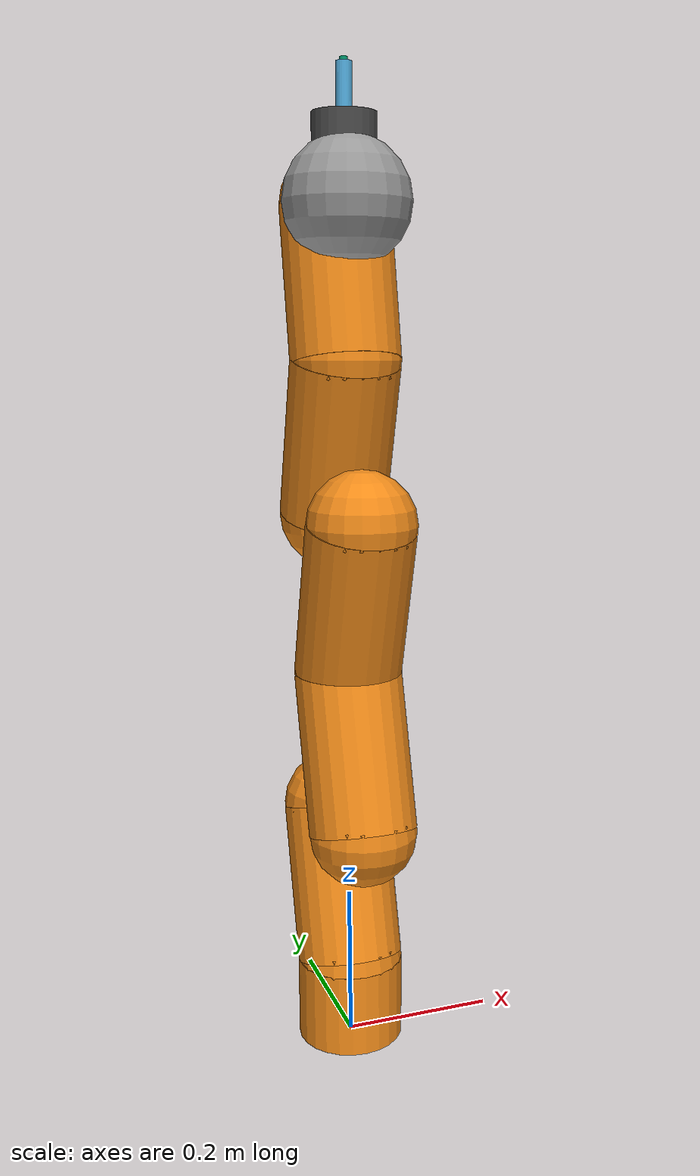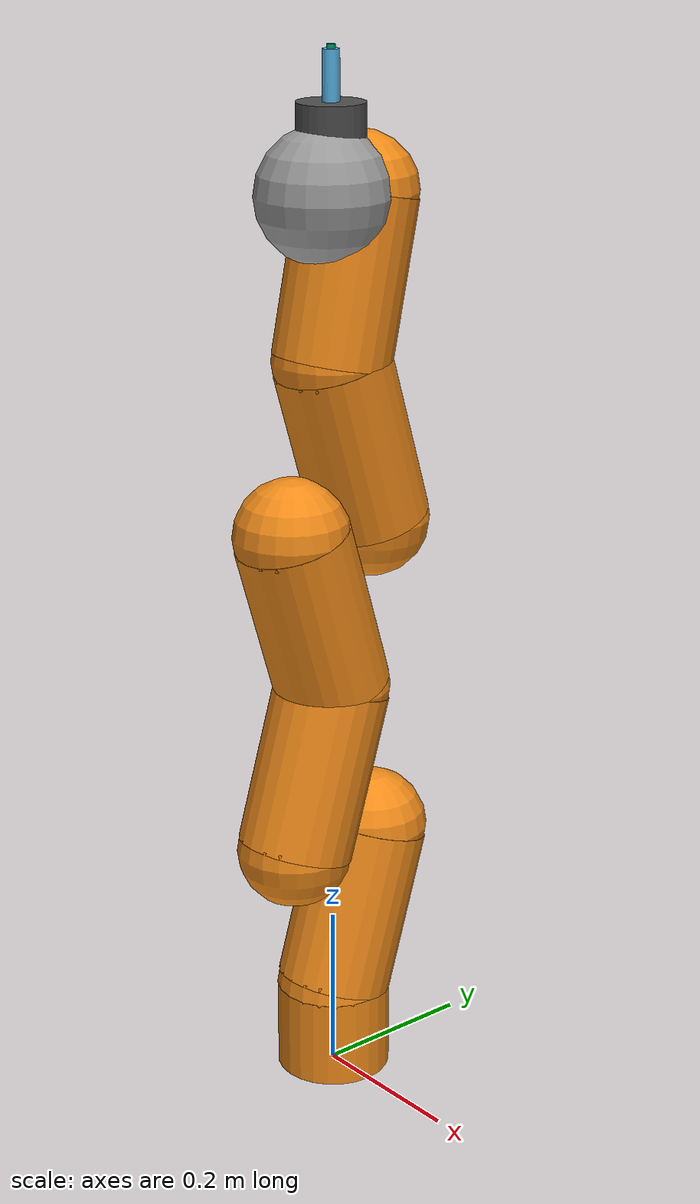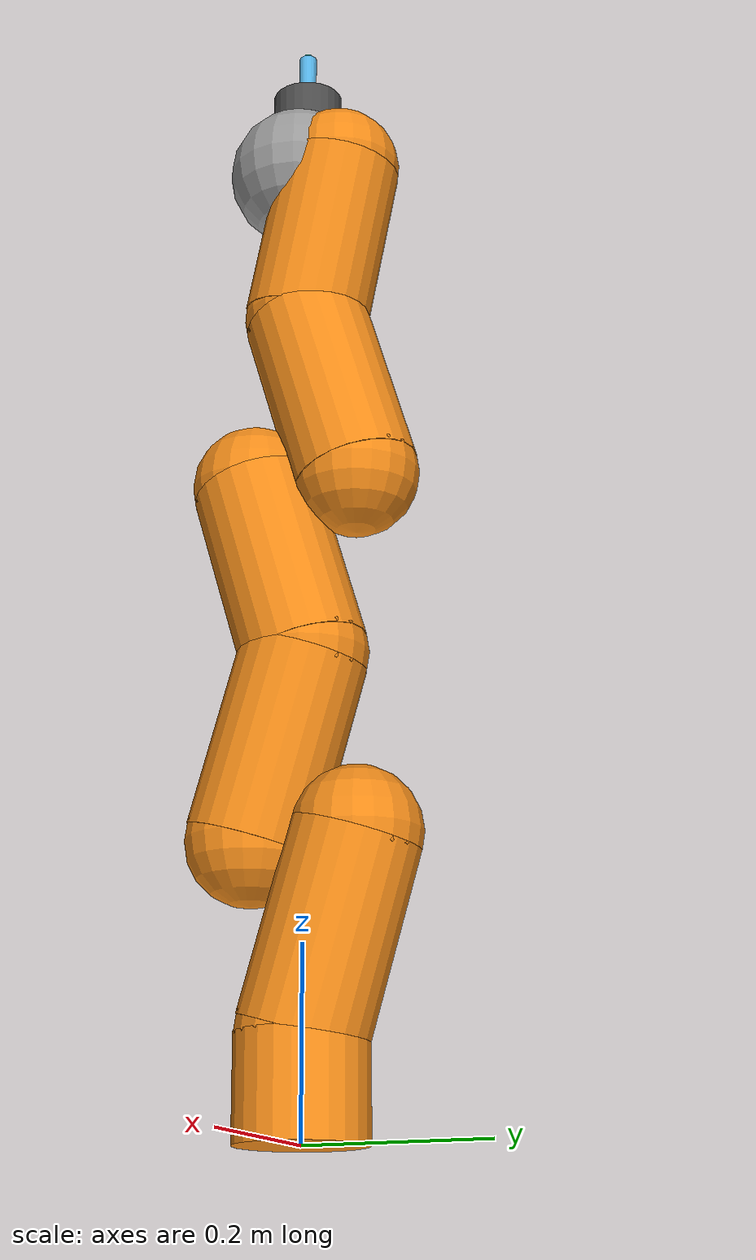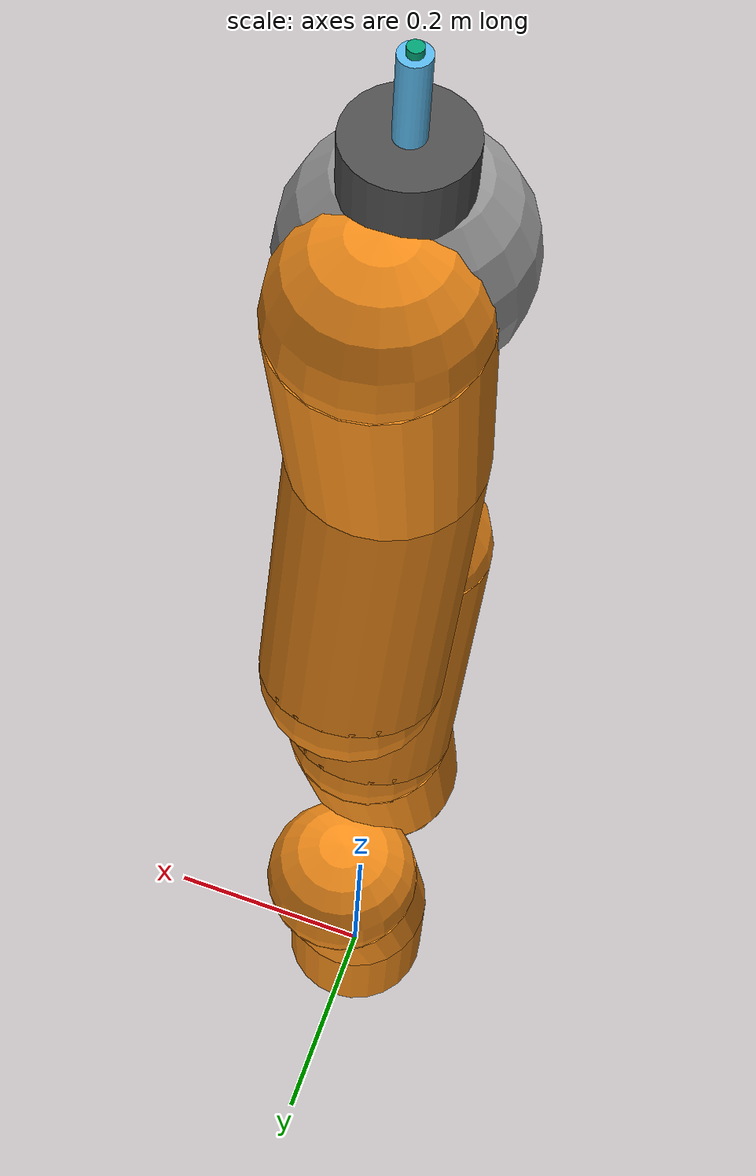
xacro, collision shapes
<?xml version="1.0"?>
<robot xmlns:xacro="http://www.ros.org/wiki/xacro" name="single_lwr_robot">
  <xacro:include filename="$(find lwr_description)/model/kuka_lwr.urdf.xacro"/>
  <!-- Match the supplied URDF: mount the arm directly at the world origin. -->
  <link name="world"/>
  <xacro:kuka_lwr parent="world" name="lwr">
    <origin xyz="0 0 0" rpy="0 0 0"/>
  </xacro:kuka_lwr>
  <gazebo reference="world_lwr_base_joint">
    <preserveFixedJoint>true</preserveFixedJoint>
  </gazebo>
</robot>

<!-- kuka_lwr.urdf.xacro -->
<robot name="kuka_lwr" xmlns:xacro="http://www.ros.org/wiki/xacro">

	<!-- utils /-->
	<xacro:include filename="$(find lwr_description)/model/utils.xacro"/>
	<xacro:include filename="$(find lwr_description)/model/kuka_materials.xacro"
	/>

	<!-- gazebo and transmission models /-->
	<xacro:include filename="$(find lwr_description)/model/kuka_lwr.gazebo.xacro"/>
	<xacro:include filename="$(find lwr_description)/model/kuka_lwr.ros2_control.xacro"/>

	<xacro:include filename="$(find lwr_description)/model/tool.xacro"/>

	<!-- properties /-->
	<xacro:property name="base_mass" value="2.0"/>
	<xacro:property name="link_mass" value="2.35"/>
    <xacro:property name="wrist_mass" value="1.1"/>
    <xacro:property name="tip_mass" value="0.25"/>
	<xacro:property name="velocity_scale" value="1"/>
	<xacro:property name="effort_scale" value="1"/>

	<xacro:property name="max_stiffness" value="5000"/>
	<xacro:property name="min_stiffness" value="0"/>
	<xacro:property name="rate_stiffness" value="20000"/> <!-- reflex to stiffness -->

	<!-- ROS 2 arguments; the ROS 1 model layout and geometry are preserved. -->
	<xacro:arg name="ros2_control_hardware_type" default="gazebo"/>
	<xacro:arg name="ros2_control_params_file" default=""/>
	<xacro:arg name="use_stiffness_joints" default="false"/>
	<xacro:arg name="fri_backend" default="fri"/>
	<xacro:arg name="fri_port" default="49939"/>
	<xacro:arg name="fri_ip" default="192.168.0.10"/>
	<xacro:arg name="fri_init_file" default=""/>
	<xacro:arg name="fri_receive_timeout_ms" default="100"/>
	<xacro:arg name="hw_root" default=""/>
	<xacro:arg name="hw_tip" default=""/>

	<!-- URDF model /-->
	<xacro:macro name="kuka_lwr" params="parent name *origin">
		<xacro:if value="${'$(arg ros2_control_hardware_type)' == 'gazebo'}">
			<xacro:if value="$(arg use_stiffness_joints)">
				<xacro:property name="invalid_stiffness" lazy_eval="false" value="${xacro.fatal('Gazebo cannot simulate ROS 1 massless stiffness metadata joints; use use_stiffness_joints:=false.')}"/>
			</xacro:if>
		</xacro:if>

		<!-- First (shoulder) element of the arm. Fixed to its parent. -->
		<joint name="${parent}_${name}_base_joint" type="fixed">
			<xacro:insert_block name="origin"/>
			<parent link="${parent}"/>
			<child link="${name}_base_link"/>
		</joint>

		<link name="${name}_base_link">
			<inertial>
				<mass value="${base_mass}"/>
				<origin xyz="0 0 0.055"  />
				<xacro:cylinder_inertia_def radius="0.06" length="0.11" mass="${base_mass}"/>
			</inertial>
			<visual>
				<origin xyz="0 0 0" rpy="0 0 ${M_PI}"/>
				<geometry>
					<mesh filename="package://lwr_description/meshes/lwr4plus/visual/base.STL"/>
				</geometry>
				<material name="Kuka/Orange"/>
			</visual>
			<collision>
				<origin xyz="0 0 0.055" rpy="0 0 ${M_PI}"/>
				<geometry>
					<cylinder radius="0.07" length="0.11"/>
				</geometry>
			</collision>
		</link>

		<!-- Second segment of the arm. Joint along z-axis -->
		<joint name="${name}_a1_joint" type="revolute">
			<origin xyz="0 0 0.11" rpy="0 0 0"/>
			<axis xyz="0 0 1"/>
			<limit lower="${-170 * M_PI / 180}" upper="${170 * M_PI / 180}" effort="176" velocity="${velocity_scale * 110 * M_PI / 180}" />
			<dynamics friction="10.0" damping="1.0"/>
			<parent link="${name}_base_link"/>
			<child link="${name}_1_link"/>
		</joint>

		<xacro:if value="$(arg use_stiffness_joints)">
		<joint name="${name}_a1_joint_stiffness" type="revolute">
			<axis xyz="0 0 1"/>
			<limit lower="${min_stiffness}" upper="${max_stiffness}" effort="0" velocity="${rate_stiffness}" />
			<safety_controller soft_lower_limit="${min_stiffness}" soft_upper_limit="${max_stiffness}" k_position="30" k_velocity="30"/>
			<parent link="${name}_base_link"/>
			<child link="${name}_1_link_dummy"/>
		</joint>
		<link name="${name}_1_link_dummy"/>
		</xacro:if>

		<link name="${name}_1_link">
			<inertial>
				<mass value="${link_mass}"/>
				<origin rpy="0 0 0" xyz="0 -0.06 0.130"/>
				<xacro:cuboid_inertia_def length="0.12" width="0.06" height="0.260" mass="${link_mass}"/>
			</inertial>
			<visual>
				<origin xyz="0 0 -0.008" rpy="0 0 ${M_PI}"/>
				<geometry>
					<mesh filename="package://lwr_description/meshes/lwr4plus/visual/link_1.STL"/>
				</geometry>
				<material name="Kuka/Orange"/>
			</visual>
			<collision>
				<origin xyz="0 0 0.0" rpy="0 0 0"/>
				<geometry>
					<sphere radius="0.07"/>
				</geometry>
			</collision>
			<collision>
				<origin xyz="0 0.06 0.2" rpy="0 0 0"/>
				<geometry>
					<sphere radius="0.07"/>
				</geometry>
			</collision>
			<collision>
				<origin xyz="0 0.03 0.1" rpy="-0.291 0 0"/>
				<geometry>
					<cylinder radius="0.07" length="0.208"/>
				</geometry>
			</collision>
		</link>

		<!-- Third segment of the arm. Joint along y-axis -->
		<joint name="${name}_a2_joint" type="revolute">
			<origin xyz="0 0 0.2005" rpy="0 0 0"/>
			<axis xyz="0 -1 0"/>
			<limit lower="${-120 * M_PI / 180}" upper="${120 * M_PI / 180}" effort="176" velocity="${velocity_scale * 110 * M_PI / 180}" />
			<dynamics friction="10.0" damping="1.0"/>
			<parent link="${name}_1_link"/>
			<child link="${name}_2_link"/>
		</joint>

		<xacro:if value="$(arg use_stiffness_joints)">
		<joint name="${name}_a2_joint_stiffness" type="revolute">
			<axis xyz="0 0 1"/>
			<limit lower="${min_stiffness}" upper="${max_stiffness}" effort="0" velocity="${rate_stiffness}" />
			<safety_controller soft_lower_limit="${min_stiffness}" soft_upper_limit="${max_stiffness}" k_position="30" k_velocity="30"/>
			<parent link="${name}_1_link"/>
			<child link="${name}_2_link_dummy"/>
		</joint>
		<link name="${name}_2_link_dummy"/>
		</xacro:if>

		<link name="${name}_2_link">
			<inertial>
				<mass value="${link_mass}"/>
				<origin rpy="0 0 0" xyz="0 0.06 ${0.130 - 0.06}"/>
				<xacro:cuboid_inertia_def length="0.12" width="0.06" height="0.260" mass="${link_mass}"/>
			</inertial>

			<visual>
				<origin xyz="0 0 0.0" rpy="0 0 ${M_PI}"/>
				<geometry>
					<mesh filename="package://lwr_description/meshes/lwr4plus/visual/link_2.STL"/>
				</geometry>
				<material name="Kuka/Orange"/>
			</visual>
			<collision>
				<origin xyz="0 0 0.2" rpy="0 0 0"/>
				<geometry>
					<sphere radius="0.07"/>
				</geometry>
			</collision>
			<collision>
				<origin xyz="0 -0.06 0.0" rpy="0 0 0"/>
				<geometry>
					<sphere radius="0.07"/>
				</geometry>
			</collision>
			<collision>
				<origin xyz="0 -0.03 0.1" rpy="-0.291 0 0"/>
				<geometry>
					<cylinder radius="0.07" length="0.208"/>
				</geometry>
			</collision>
		</link>

		<!-- Fourth element of the arm. z-axis -->
		<joint name="${name}_e1_joint" type="revolute">
			<origin xyz="0 0 0.20" rpy="0 0 0"/>
			<axis xyz="0 0 1"/>
			<limit lower="${-170 * M_PI / 180}" upper="${170 * M_PI / 180}" effort="100" velocity="${velocity_scale * 128 * M_PI / 180}" />
			<dynamics friction="10.0" damping="1.0"/>
			<parent link="${name}_2_link"/>
			<child link="${name}_3_link"/>
		</joint>

		<xacro:if value="$(arg use_stiffness_joints)">
		<joint name="${name}_e1_joint_stiffness" type="revolute">
			<axis xyz="0 0 1"/>
			<limit lower="${min_stiffness}" upper="${max_stiffness}" effort="0" velocity="${rate_stiffness}" />
			<safety_controller soft_lower_limit="${min_stiffness}" soft_upper_limit="${max_stiffness}" k_position="30" k_velocity="30"/>
			<parent link="${name}_2_link"/>
			<child link="${name}_3_link_dummy"/>
		</joint>
		<link name="${name}_3_link_dummy"/>
		</xacro:if>

		<link name="${name}_3_link">
			<inertial>
				<mass value="${link_mass}"/>
				<origin rpy="0 0 0" xyz="0 0.06 0.130"/>
				<xacro:cuboid_inertia_def length="0.12" width="0.06" height="0.260" mass="${link_mass}"/>
			</inertial>

			<visual>
				<origin xyz="0 0 -0.008" rpy="0 0 ${M_PI}"/>
				<geometry>
					<mesh filename="package://lwr_description/meshes/lwr4plus/visual/link_3.STL"/>
				</geometry>
				<material name="Kuka/Orange"/>
			</visual>
			<collision>
				<origin xyz="0 0 0.0" rpy="0 0 0"/>
				<geometry>
					<sphere radius="0.07"/>
				</geometry>
			</collision>
			<collision>
				<origin xyz="0 -0.06 0.2" rpy="0 0 0"/>
				<geometry>
					<sphere radius="0.07"/>
				</geometry>
			</collision>
			<collision>
				<origin xyz="0 -0.03 0.1" rpy="0.291 0 0"/>
				<geometry>
					<cylinder radius="0.07" length="0.208"/>
				</geometry>
			</collision>
		</link>

		<!-- fifth element of the arm. x-axis -->
		<joint name="${name}_a3_joint" type="revolute">
			<origin xyz="0 0 0.20" rpy="0 0 0"/>
			<axis xyz="0 1 0"/>
			<limit lower="${-120 * M_PI / 180}" upper="${120 * M_PI / 180}" effort="100" velocity="${velocity_scale * 128 * M_PI / 180}" />
			<dynamics friction="10.0" damping="1.0"/>
			<parent link="${name}_3_link"/>
			<child link="${name}_4_link"/>
		</joint>

		<xacro:if value="$(arg use_stiffness_joints)">
		<joint name="${name}_a3_joint_stiffness" type="revolute">
			<axis xyz="0 0 1"/>
			<limit lower="${min_stiffness}" upper="${max_stiffness}" effort="0" velocity="${rate_stiffness}" />
			<safety_controller soft_lower_limit="${min_stiffness}" soft_upper_limit="${max_stiffness}" k_position="30" k_velocity="30"/>
			<parent link="${name}_3_link"/>
			<child link="${name}_4_link_dummy"/>
		</joint>
		<link name="${name}_4_link_dummy"/>
		</xacro:if>

		<link name="${name}_4_link">
			<inertial>
				<mass value="${link_mass}"/>
				<origin rpy="0 0 0" xyz="0 -0.06 ${0.130 - 0.06}"/>
				<xacro:cuboid_inertia_def length="0.12" width="0.06" height="0.2600" mass="${link_mass}"/>
			</inertial>

			<visual>
				<origin xyz="0 0 0.0" rpy="0 0 ${M_PI}"/>
				<geometry>
					<mesh filename="package://lwr_description/meshes/lwr4plus/visual/link_4.STL"/>
				</geometry>
				<material name="Kuka/Orange"/>
			</visual>
			<collision>
			<origin xyz="0 0 0.2" rpy="0 0 0"/>
			<geometry>
				<sphere radius="0.07"/>
			</geometry>
			</collision>
			<collision>
				<origin xyz="0 0.06 0.0" rpy="0 0 0"/>
				<geometry>
					<sphere radius="0.07"/>
				</geometry>
			</collision>
			<collision>
				<origin xyz="0 0.03 0.1" rpy="0.291 0 0"/>
				<geometry>
					<cylinder radius="0.07" length="0.208"/>
				</geometry>
			</collision>
		</link>

		<!-- Sixth element of the arm. z-axis -->
		<joint name="${name}_a4_joint" type="revolute">
			<origin xyz="0 0 0.20" rpy="0 0 0"/>
			<axis xyz="0 0 1"/>
			<limit lower="${-170 * M_PI / 180}" upper="${170 * M_PI / 180}" effort="100" velocity="${velocity_scale * 204 * M_PI / 180}" />
			<dynamics friction="10.0" damping="1.0"/>
			<parent link="${name}_4_link"/>
			<child link="${name}_5_link"/>
		</joint>

		<xacro:if value="$(arg use_stiffness_joints)">
		<joint name="${name}_a4_joint_stiffness" type="revolute">
			<axis xyz="0 0 1"/>
			<limit lower="${min_stiffness}" upper="${max_stiffness}" effort="0" velocity="${rate_stiffness}" />
			<safety_controller soft_lower_limit="${min_stiffness}" soft_upper_limit="${max_stiffness}" k_position="30" k_velocity="30"/>
			<parent link="${name}_4_link"/>
			<child link="${name}_5_link_dummy"/>
		</joint>
		<link name="${name}_5_link_dummy"/>
		</xacro:if>

		<link name="${name}_5_link">
			<inertial>
				<mass value="${link_mass}"/>
				<origin rpy="0 0 0" xyz="0 0 0.124"/>
				<xacro:cuboid_inertia_def length="0.12" width="0.06" height="0.248" mass="${link_mass}"/>
			</inertial>

			<visual>
				<origin xyz="0 0 -0.008" rpy="0 0 ${M_PI}"/>
				<geometry>
					<mesh filename="package://lwr_description/meshes/lwr4plus/visual/link_5.STL"/>
				</geometry>
				<material name="Kuka/Orange"/>
			</visual>

			<collision>
				<origin xyz="0 0 0.0" rpy="0 0 0"/>
				<geometry>
					<sphere radius="0.07"/>
				</geometry>
			</collision>
			<collision>
				<origin xyz="0 0.04 0.19" rpy="0 0 0"/>
				<geometry>
					<sphere radius="0.07"/>
				</geometry>
			</collision>
			<collision>
				<origin xyz="0 0.02 0.095" rpy="-0.207 0 0"/>
				<geometry>
					<cylinder radius="0.07" length="0.198"/>
				</geometry>
			</collision>
		</link>

		<!-- Seventh element of the arm. z-axis -->
		<joint name="${name}_a5_joint" type="revolute">
			<origin xyz="0 0 0.19" rpy="0 0 0"/>
			<axis xyz="0 -1 0"/>
			<limit lower="${-120 * M_PI / 180}" upper="${120 * M_PI / 180}" effort="38" velocity="${velocity_scale * 184 * M_PI / 180}" />
			<dynamics friction="10.0" damping="1.0"/>
			<parent link="${name}_5_link"/>
			<child link="${name}_6_link"/>
		</joint>

		<xacro:if value="$(arg use_stiffness_joints)">
		<joint name="${name}_a5_joint_stiffness" type="revolute">
			<axis xyz="0 0 1"/>
			<limit lower="${min_stiffness}" upper="${max_stiffness}" effort="0" velocity="${rate_stiffness}" />
			<safety_controller soft_lower_limit="${min_stiffness}" soft_upper_limit="${max_stiffness}" k_position="30" k_velocity="30"/>
			<parent link="${name}_5_link"/>
			<child link="${name}_6_link_dummy"/>
		</joint>
		<link name="${name}_6_link_dummy"/>
		</xacro:if>

		<link name="${name}_6_link">
			<inertial>
				<mass value="${wrist_mass}"/>
				<origin rpy="0 0 0" xyz="0 0 0.0625"/>
				<xacro:cuboid_inertia_def length="0.125" width="0.125" height="0.125" mass="${wrist_mass}"/>
			</inertial>

			<visual>
				<origin xyz="0 0 0" rpy="0 0 ${M_PI}"/>
				<geometry>
					<mesh filename="package://lwr_description/meshes/lwr4plus/visual/link_6.STL"/>
				</geometry>
			<material name="Kuka/Grey"/>
			</visual>
			<collision>
			<origin xyz="0 -0.01 0" rpy="0 0 ${M_PI}"/>
			<geometry>
				<sphere radius="0.08"/>
			</geometry>
			</collision>
		</link>

		<!-- Eighth element of the arm. z-axis -->
		<joint name="${name}_a6_joint" type="revolute">
			<origin xyz="0 0 0.078" rpy="0 0 0"/>
			<axis xyz="0 0 1"/>
			<limit lower="${-170 * M_PI / 180}" upper="${170 * M_PI / 180}" effort="38" velocity="${velocity_scale * 184 * M_PI / 180}" />
			<dynamics friction="10.0" damping="1.0"/>
			<parent link="${name}_6_link"/>
			<child link="${name}_7_link"/>
		</joint>

		<xacro:if value="$(arg use_stiffness_joints)">
		<joint name="${name}_a6_joint_stiffness" type="revolute">
			<axis xyz="0 0 1"/>
			<limit lower="${min_stiffness}" upper="${max_stiffness}" effort="0" velocity="${rate_stiffness}" />
			<safety_controller soft_lower_limit="${min_stiffness}" soft_upper_limit="${max_stiffness}" k_position="30" k_velocity="30"/>
			<parent link="${name}_6_link"/>
			<child link="${name}_7_link_dummy"/>
		</joint>
		<link name="${name}_7_link_dummy"/>
		</xacro:if>

		<link name="${name}_7_link">
			<inertial>
				<mass value="${tip_mass}"/>
				<origin xyz="0 0 0"/>
				<xacro:cuboid_inertia_def length="0.1" width="0.1" height="0.1" mass="${tip_mass}"/>
			</inertial>
			<visual>
				<origin xyz="0 0 0" rpy="0 0 ${M_PI}"/>
				<geometry>
					<mesh filename="package://lwr_description/meshes/lwr4plus/visual/link_7.STL"/>
				</geometry>
			<material name="Kuka/DarkGrey"/>
			</visual>

			<collision>
			<origin xyz="0 0 0" rpy="0 0 ${M_PI}"/>
			<geometry>
				<cylinder radius="0.04" length="0.05"/>
			</geometry>
			</collision>
		</link>

		<!-- Tool geometry and mounting transforms from urdf/lwr_with_tool.urdf. -->
		<xacro:tool prefix="${'' if name == 'lwr' else name + '_'}" connected_to="${name}_7_link"/>

		<xacro:if value="${'$(arg ros2_control_hardware_type)' == 'gazebo'}">
			<xacro:kuka_lwr_gazebo name="${name}"/>
		</xacro:if>
		<xacro:kuka_lwr_ros2_control name="${name}"/>

	</xacro:macro>

</robot>

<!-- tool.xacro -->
<robot xmlns:xacro="http://www.ros.org/wiki/xacro">
  <xacro:macro name="tool" params="prefix connected_to">
    <joint name="${prefix}tool_joint" type="fixed">
      <parent link="${connected_to}" />
      <child link="${prefix}tool" />
      <origin rpy="0 0 0" xyz="0 0 0.0275" />
    </joint>
    <link name="${prefix}tool">
      <visual>
        <geometry>
          <cylinder length="0.11" radius="0.01" />
        </geometry>
      </visual>
      <collision>
        <geometry>
          <cylinder length="0.11" radius="0.01" />
        </geometry>
      </collision>
    </link>
    <joint name="${prefix}ee_tool_joint" type="fixed">
      <parent link="${prefix}tool" />
      <child link="${prefix}tool_ee" />
      <origin rpy="0 0 0" xyz="0 0 0.055" />
    </joint>
    <link name="${prefix}tool_ee">
      <visual>
        <geometry>
          <cylinder length="0.11" radius="0.005" />
        </geometry>
      </visual>
      <collision>
        <geometry>
          <cylinder length="0.01" radius="0.005" />
        </geometry>
      </collision>
    </link>
    <joint name="${prefix}tcp_joint" type="fixed">
      <origin rpy="0 0 0" xyz="0 0 0.116" />
      <parent link="${prefix}tool_ee" />
      <child link="${prefix}tcp" />
    </joint>
    <link name="${prefix}tcp" />
  </xacro:macro>
</robot>
